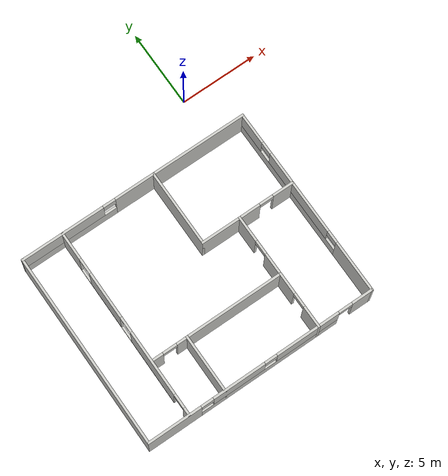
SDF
<?xml version='1.0'?>
<sdf version='1.7'>
  <model name='my_building'>
    <pose>-5.64 -7.855 0 0 -0 0</pose>
    <link name='Wall_38'>
      <collision name='Wall_38_Collision'>
        <geometry>
          <box>
            <size>12.5 0.15 2.5</size>
          </box>
        </geometry>
        <pose>0 0 1.25 0 -0 0</pose>
      </collision>
      <visual name='Wall_38_Visual'>
        <pose>0 0 1.25 0 -0 0</pose>
        <geometry>
          <box>
            <size>12.5 0.15 2.5</size>
          </box>
        </geometry>
        <material>
          <script>
            <uri>file://media/materials/scripts/gazebo.material</uri>
            <name>Gazebo/CeilingTiled</name>
          </script>
          <ambient>0.760784 0.662745 0.627451 1</ambient>
        </material>
        <meta>
          <layer>0</layer>
        </meta>
      </visual>
      <pose>-7.425 -1.605 0 0 -0 -1.5708</pose>
    </link>
    <link name='Wall_39'>
      <pose>-0 -7.78 0 0 -0 0</pose>
      <visual name='Wall_39_Visual_0'>
        <pose>-5.74511 0 1.25 0 -0 0</pose>
        <geometry>
          <box>
            <size>3.50978 0.15 2.5</size>
          </box>
        </geometry>
        <material>
          <script>
            <uri>file://media/materials/scripts/gazebo.material</uri>
            <name>Gazebo/CeilingTiled</name>
          </script>
          <ambient>0.760784 0.662745 0.627451 1</ambient>
        </material>
        <meta>
          <layer>0</layer>
        </meta>
      </visual>
      <collision name='Wall_39_Collision_0'>
        <geometry>
          <box>
            <size>3.50978 0.15 2.5</size>
          </box>
        </geometry>
        <pose>-5.74511 0 1.25 0 -0 0</pose>
      </collision>
      <visual name='Wall_39_Visual_1'>
        <pose>6.79076 0 1.25 0 -0 0</pose>
        <geometry>
          <box>
            <size>1.41848 0.15 2.5</size>
          </box>
        </geometry>
        <material>
          <script>
            <uri>file://media/materials/scripts/gazebo.material</uri>
            <name>Gazebo/CeilingTiled</name>
          </script>
          <ambient>0.760784 0.662745 0.627451 1</ambient>
        </material>
        <meta>
          <layer>0</layer>
        </meta>
      </visual>
      <collision name='Wall_39_Collision_1'>
        <geometry>
          <box>
            <size>1.41848 0.15 2.5</size>
          </box>
        </geometry>
        <pose>6.79076 0 1.25 0 -0 0</pose>
      </collision>
      <visual name='Wall_39_Visual_2'>
        <pose>0.595652 0 0.5 0 -0 0</pose>
        <geometry>
          <box>
            <size>9.17174 0.15 1</size>
          </box>
        </geometry>
        <material>
          <script>
            <uri>file://media/materials/scripts/gazebo.material</uri>
            <name>Gazebo/CeilingTiled</name>
          </script>
          <ambient>0.760784 0.662745 0.627451 1</ambient>
        </material>
        <meta>
          <layer>0</layer>
        </meta>
      </visual>
      <collision name='Wall_39_Collision_2'>
        <geometry>
          <box>
            <size>9.17174 0.15 1</size>
          </box>
        </geometry>
        <pose>0.595652 0 0.5 0 -0 0</pose>
      </collision>
      <visual name='Wall_39_Visual_3'>
        <pose>-1.4837 0 1.75 0 -0 0</pose>
        <geometry>
          <box>
            <size>3.41304 0.15 1.5</size>
          </box>
        </geometry>
        <material>
          <script>
            <uri>file://media/materials/scripts/gazebo.material</uri>
            <name>Gazebo/CeilingTiled</name>
          </script>
          <ambient>0.760784 0.662745 0.627451 1</ambient>
        </material>
        <meta>
          <layer>0</layer>
        </meta>
      </visual>
      <collision name='Wall_39_Collision_3'>
        <geometry>
          <box>
            <size>3.41304 0.15 1.5</size>
          </box>
        </geometry>
        <pose>-1.4837 0 1.75 0 -0 0</pose>
      </collision>
      <visual name='Wall_39_Visual_4'>
        <pose>3.10217 0 1.75 0 -0 0</pose>
        <geometry>
          <box>
            <size>4.1587 0.15 1.5</size>
          </box>
        </geometry>
        <material>
          <script>
            <uri>file://media/materials/scripts/gazebo.material</uri>
            <name>Gazebo/CeilingTiled</name>
          </script>
          <ambient>0.760784 0.662745 0.627451 1</ambient>
        </material>
        <meta>
          <layer>0</layer>
        </meta>
      </visual>
      <collision name='Wall_39_Collision_4'>
        <geometry>
          <box>
            <size>4.1587 0.15 1.5</size>
          </box>
        </geometry>
        <pose>3.10217 0 1.75 0 -0 0</pose>
      </collision>
      <visual name='Wall_39_Visual_5'>
        <pose>-3.59022 0 2.15 0 -0 0</pose>
        <geometry>
          <box>
            <size>0.8 0.15 0.7</size>
          </box>
        </geometry>
        <material>
          <script>
            <uri>file://media/materials/scripts/gazebo.material</uri>
            <name>Gazebo/CeilingTiled</name>
          </script>
          <ambient>0.760784 0.662745 0.627451 1</ambient>
        </material>
        <meta>
          <layer>0</layer>
        </meta>
      </visual>
      <collision name='Wall_39_Collision_5'>
        <geometry>
          <box>
            <size>0.8 0.15 0.7</size>
          </box>
        </geometry>
        <pose>-3.59022 0 2.15 0 -0 0</pose>
      </collision>
      <visual name='Wall_39_Visual_6'>
        <pose>0.622826 0 2.15 0 -0 0</pose>
        <geometry>
          <box>
            <size>0.8 0.15 0.7</size>
          </box>
        </geometry>
        <material>
          <script>
            <uri>file://media/materials/scripts/gazebo.material</uri>
            <name>Gazebo/CeilingTiled</name>
          </script>
          <ambient>0.760784 0.662745 0.627451 1</ambient>
        </material>
        <meta>
          <layer>0</layer>
        </meta>
      </visual>
      <collision name='Wall_39_Collision_6'>
        <geometry>
          <box>
            <size>0.8 0.15 0.7</size>
          </box>
        </geometry>
        <pose>0.622826 0 2.15 0 -0 0</pose>
      </collision>
      <visual name='Wall_39_Visual_7'>
        <pose>5.63152 0 2.25 0 -0 0</pose>
        <geometry>
          <box>
            <size>0.9 0.15 0.5</size>
          </box>
        </geometry>
        <material>
          <script>
            <uri>file://media/materials/scripts/gazebo.material</uri>
            <name>Gazebo/CeilingTiled</name>
          </script>
          <ambient>0.760784 0.662745 0.627451 1</ambient>
        </material>
        <meta>
          <layer>0</layer>
        </meta>
      </visual>
      <collision name='Wall_39_Collision_7'>
        <geometry>
          <box>
            <size>0.9 0.15 0.5</size>
          </box>
        </geometry>
        <pose>5.63152 0 2.25 0 -0 0</pose>
      </collision>
    </link>
    <link name='Wall_40'>
      <pose>7.425 -1.605 0 0 -0 1.5708</pose>
      <visual name='Wall_40_Visual_0'>
        <pose>-4.57446 0 1.25 0 -0 0</pose>
        <geometry>
          <box>
            <size>3.35109 0.15 2.5</size>
          </box>
        </geometry>
        <material>
          <script>
            <uri>file://media/materials/scripts/gazebo.material</uri>
            <name>Gazebo/CeilingTiled</name>
          </script>
          <ambient>0.760784 0.662745 0.627451 1</ambient>
        </material>
        <meta>
          <layer>0</layer>
        </meta>
      </visual>
      <collision name='Wall_40_Collision_0'>
        <geometry>
          <box>
            <size>3.35109 0.15 2.5</size>
          </box>
        </geometry>
        <pose>-4.57446 0 1.25 0 -0 0</pose>
      </collision>
      <visual name='Wall_40_Visual_1'>
        <pose>1.67554 0 0.5 0 -0 0</pose>
        <geometry>
          <box>
            <size>9.14891 0.15 1</size>
          </box>
        </geometry>
        <material>
          <script>
            <uri>file://media/materials/scripts/gazebo.material</uri>
            <name>Gazebo/CeilingTiled</name>
          </script>
          <ambient>0.760784 0.662745 0.627451 1</ambient>
        </material>
        <meta>
          <layer>0</layer>
        </meta>
      </visual>
      <collision name='Wall_40_Collision_1'>
        <geometry>
          <box>
            <size>9.14891 0.15 1</size>
          </box>
        </geometry>
        <pose>1.67554 0 0.5 0 -0 0</pose>
      </collision>
      <visual name='Wall_40_Visual_2'>
        <pose>0.651087 0 1.75 0 -0 0</pose>
        <geometry>
          <box>
            <size>5.5 0.15 1.5</size>
          </box>
        </geometry>
        <material>
          <script>
            <uri>file://media/materials/scripts/gazebo.material</uri>
            <name>Gazebo/CeilingTiled</name>
          </script>
          <ambient>0.760784 0.662745 0.627451 1</ambient>
        </material>
        <meta>
          <layer>0</layer>
        </meta>
      </visual>
      <collision name='Wall_40_Collision_2'>
        <geometry>
          <box>
            <size>5.5 0.15 1.5</size>
          </box>
        </geometry>
        <pose>0.651087 0 1.75 0 -0 0</pose>
      </collision>
      <visual name='Wall_40_Visual_3'>
        <pose>5.22554 0 1.75 0 -0 0</pose>
        <geometry>
          <box>
            <size>2.04891 0.15 1.5</size>
          </box>
        </geometry>
        <material>
          <script>
            <uri>file://media/materials/scripts/gazebo.material</uri>
            <name>Gazebo/CeilingTiled</name>
          </script>
          <ambient>0.760784 0.662745 0.627451 1</ambient>
        </material>
        <meta>
          <layer>0</layer>
        </meta>
      </visual>
      <collision name='Wall_40_Collision_3'>
        <geometry>
          <box>
            <size>2.04891 0.15 1.5</size>
          </box>
        </geometry>
        <pose>5.22554 0 1.75 0 -0 0</pose>
      </collision>
      <visual name='Wall_40_Visual_4'>
        <pose>-2.49891 0 2.15 0 -0 0</pose>
        <geometry>
          <box>
            <size>0.8 0.15 0.7</size>
          </box>
        </geometry>
        <material>
          <script>
            <uri>file://media/materials/scripts/gazebo.material</uri>
            <name>Gazebo/CeilingTiled</name>
          </script>
          <ambient>0.760784 0.662745 0.627451 1</ambient>
        </material>
        <meta>
          <layer>0</layer>
        </meta>
      </visual>
      <collision name='Wall_40_Collision_4'>
        <geometry>
          <box>
            <size>0.8 0.15 0.7</size>
          </box>
        </geometry>
        <pose>-2.49891 0 2.15 0 -0 0</pose>
      </collision>
      <visual name='Wall_40_Visual_5'>
        <pose>3.80109 0 2.15 0 -0 0</pose>
        <geometry>
          <box>
            <size>0.8 0.15 0.7</size>
          </box>
        </geometry>
        <material>
          <script>
            <uri>file://media/materials/scripts/gazebo.material</uri>
            <name>Gazebo/CeilingTiled</name>
          </script>
          <ambient>0.760784 0.662745 0.627451 1</ambient>
        </material>
        <meta>
          <layer>0</layer>
        </meta>
      </visual>
      <collision name='Wall_40_Collision_5'>
        <geometry>
          <box>
            <size>0.8 0.15 0.7</size>
          </box>
        </geometry>
        <pose>3.80109 0 2.15 0 -0 0</pose>
      </collision>
    </link>
    <link name='Wall_41'>
      <pose>-0 4.57 0 0 -0 3.14159</pose>
      <visual name='Wall_41_Visual_0'>
        <pose>-3.11359 0 1.25 0 -0 0</pose>
        <geometry>
          <box>
            <size>8.77283 0.15 2.5</size>
          </box>
        </geometry>
        <material>
          <script>
            <uri>file://media/materials/scripts/gazebo.material</uri>
            <name>Gazebo/CeilingTiled</name>
          </script>
          <ambient>0.760784 0.662745 0.627451 1</ambient>
        </material>
        <meta>
          <layer>0</layer>
        </meta>
      </visual>
      <collision name='Wall_41_Collision_0'>
        <geometry>
          <box>
            <size>8.77283 0.15 2.5</size>
          </box>
        </geometry>
        <pose>-3.11359 0 1.25 0 -0 0</pose>
      </collision>
      <visual name='Wall_41_Visual_1'>
        <pose>4.38641 0 0.5 0 -0 0</pose>
        <geometry>
          <box>
            <size>6.22717 0.15 1</size>
          </box>
        </geometry>
        <material>
          <script>
            <uri>file://media/materials/scripts/gazebo.material</uri>
            <name>Gazebo/CeilingTiled</name>
          </script>
          <ambient>0.760784 0.662745 0.627451 1</ambient>
        </material>
        <meta>
          <layer>0</layer>
        </meta>
      </visual>
      <collision name='Wall_41_Collision_1'>
        <geometry>
          <box>
            <size>6.22717 0.15 1</size>
          </box>
        </geometry>
        <pose>4.38641 0 0.5 0 -0 0</pose>
      </collision>
      <visual name='Wall_41_Visual_2'>
        <pose>4.78641 0 1.75 0 -0 0</pose>
        <geometry>
          <box>
            <size>5.42717 0.15 1.5</size>
          </box>
        </geometry>
        <material>
          <script>
            <uri>file://media/materials/scripts/gazebo.material</uri>
            <name>Gazebo/CeilingTiled</name>
          </script>
          <ambient>0.760784 0.662745 0.627451 1</ambient>
        </material>
        <meta>
          <layer>0</layer>
        </meta>
      </visual>
      <collision name='Wall_41_Collision_2'>
        <geometry>
          <box>
            <size>5.42717 0.15 1.5</size>
          </box>
        </geometry>
        <pose>4.78641 0 1.75 0 -0 0</pose>
      </collision>
      <visual name='Wall_41_Visual_3'>
        <pose>1.67283 0 2.15 0 -0 0</pose>
        <geometry>
          <box>
            <size>0.8 0.15 0.7</size>
          </box>
        </geometry>
        <material>
          <script>
            <uri>file://media/materials/scripts/gazebo.material</uri>
            <name>Gazebo/CeilingTiled</name>
          </script>
          <ambient>0.760784 0.662745 0.627451 1</ambient>
        </material>
        <meta>
          <layer>0</layer>
        </meta>
      </visual>
      <collision name='Wall_41_Collision_3'>
        <geometry>
          <box>
            <size>0.8 0.15 0.7</size>
          </box>
        </geometry>
        <pose>1.67283 0 2.15 0 -0 0</pose>
      </collision>
    </link>
    <link name='Wall_44'>
      <collision name='Wall_44_Collision'>
        <geometry>
          <box>
            <size>5 0.15 2.5</size>
          </box>
        </geometry>
        <pose>0 0 1.25 0 -0 0</pose>
      </collision>
      <visual name='Wall_44_Visual'>
        <pose>0 0 1.25 0 -0 0</pose>
        <geometry>
          <box>
            <size>5 0.15 2.5</size>
          </box>
        </geometry>
        <material>
          <script>
            <uri>file://media/materials/scripts/gazebo.material</uri>
            <name>Gazebo/CeilingTiled</name>
          </script>
          <ambient>0.760784 0.662745 0.627451 1</ambient>
        </material>
        <meta>
          <layer>0</layer>
        </meta>
      </visual>
      <pose>1.325 2.145 0 0 -0 -1.5708</pose>
    </link>
    <link name='Wall_45'>
      <pose>4.375 -0.28 0 0 -0 0</pose>
      <visual name='Wall_45_Visual_0'>
        <pose>-1.15924 0 1.25 0 -0 0</pose>
        <geometry>
          <box>
            <size>3.93152 0.15 2.5</size>
          </box>
        </geometry>
        <material>
          <script>
            <uri>file://media/materials/scripts/gazebo.material</uri>
            <name>Gazebo/CeilingTiled</name>
          </script>
          <ambient>0.760784 0.662745 0.627451 1</ambient>
        </material>
        <meta>
          <layer>0</layer>
        </meta>
      </visual>
      <collision name='Wall_45_Collision_0'>
        <geometry>
          <box>
            <size>3.93152 0.15 2.5</size>
          </box>
        </geometry>
        <pose>-1.15924 0 1.25 0 -0 0</pose>
      </collision>
      <visual name='Wall_45_Visual_1'>
        <pose>2.41576 0 1.25 0 -0 0</pose>
        <geometry>
          <box>
            <size>1.41848 0.15 2.5</size>
          </box>
        </geometry>
        <material>
          <script>
            <uri>file://media/materials/scripts/gazebo.material</uri>
            <name>Gazebo/CeilingTiled</name>
          </script>
          <ambient>0.760784 0.662745 0.627451 1</ambient>
        </material>
        <meta>
          <layer>0</layer>
        </meta>
      </visual>
      <collision name='Wall_45_Collision_1'>
        <geometry>
          <box>
            <size>1.41848 0.15 2.5</size>
          </box>
        </geometry>
        <pose>2.41576 0 1.25 0 -0 0</pose>
      </collision>
      <visual name='Wall_45_Visual_2'>
        <pose>1.25652 0 2.25 0 -0 0</pose>
        <geometry>
          <box>
            <size>0.9 0.15 0.5</size>
          </box>
        </geometry>
        <material>
          <script>
            <uri>file://media/materials/scripts/gazebo.material</uri>
            <name>Gazebo/CeilingTiled</name>
          </script>
          <ambient>0.760784 0.662745 0.627451 1</ambient>
        </material>
        <meta>
          <layer>0</layer>
        </meta>
      </visual>
      <collision name='Wall_45_Collision_2'>
        <geometry>
          <box>
            <size>0.9 0.15 0.5</size>
          </box>
        </geometry>
        <pose>1.25652 0 2.25 0 -0 0</pose>
      </collision>
    </link>
    <link name='Wall_48'>
      <pose>3.825 -4.03 0 0 -0 -1.5708</pose>
      <visual name='Wall_48_Visual_0'>
        <pose>-2.98098 0 1.25 0 -0 0</pose>
        <geometry>
          <box>
            <size>1.68804 0.15 2.5</size>
          </box>
        </geometry>
        <material>
          <script>
            <uri>file://media/materials/scripts/gazebo.material</uri>
            <name>Gazebo/CeilingTiled</name>
          </script>
          <ambient>0.760784 0.662745 0.627451 1</ambient>
        </material>
        <meta>
          <layer>0</layer>
        </meta>
      </visual>
      <collision name='Wall_48_Collision_0'>
        <geometry>
          <box>
            <size>1.68804 0.15 2.5</size>
          </box>
        </geometry>
        <pose>-2.98098 0 1.25 0 -0 0</pose>
      </collision>
      <visual name='Wall_48_Visual_1'>
        <pose>0.132608 0 1.25 0 -0 0</pose>
        <geometry>
          <box>
            <size>2.73913 0.15 2.5</size>
          </box>
        </geometry>
        <material>
          <script>
            <uri>file://media/materials/scripts/gazebo.material</uri>
            <name>Gazebo/CeilingTiled</name>
          </script>
          <ambient>0.760784 0.662745 0.627451 1</ambient>
        </material>
        <meta>
          <layer>0</layer>
        </meta>
      </visual>
      <collision name='Wall_48_Collision_1'>
        <geometry>
          <box>
            <size>2.73913 0.15 2.5</size>
          </box>
        </geometry>
        <pose>0.132608 0 1.25 0 -0 0</pose>
      </collision>
      <visual name='Wall_48_Visual_2'>
        <pose>3.11359 0 1.25 0 -0 0</pose>
        <geometry>
          <box>
            <size>1.42283 0.15 2.5</size>
          </box>
        </geometry>
        <material>
          <script>
            <uri>file://media/materials/scripts/gazebo.material</uri>
            <name>Gazebo/CeilingTiled</name>
          </script>
          <ambient>0.760784 0.662745 0.627451 1</ambient>
        </material>
        <meta>
          <layer>0</layer>
        </meta>
      </visual>
      <collision name='Wall_48_Collision_2'>
        <geometry>
          <box>
            <size>1.42283 0.15 2.5</size>
          </box>
        </geometry>
        <pose>3.11359 0 1.25 0 -0 0</pose>
      </collision>
      <visual name='Wall_48_Visual_3'>
        <pose>-1.68696 0 2.25 0 -0 0</pose>
        <geometry>
          <box>
            <size>0.9 0.15 0.5</size>
          </box>
        </geometry>
        <material>
          <script>
            <uri>file://media/materials/scripts/gazebo.material</uri>
            <name>Gazebo/CeilingTiled</name>
          </script>
          <ambient>0.760784 0.662745 0.627451 1</ambient>
        </material>
        <meta>
          <layer>0</layer>
        </meta>
      </visual>
      <collision name='Wall_48_Collision_3'>
        <geometry>
          <box>
            <size>0.9 0.15 0.5</size>
          </box>
        </geometry>
        <pose>-1.68696 0 2.25 0 -0 0</pose>
      </collision>
      <visual name='Wall_48_Visual_4'>
        <pose>1.95217 0 2.25 0 -0 0</pose>
        <geometry>
          <box>
            <size>0.9 0.15 0.5</size>
          </box>
        </geometry>
        <material>
          <script>
            <uri>file://media/materials/scripts/gazebo.material</uri>
            <name>Gazebo/CeilingTiled</name>
          </script>
          <ambient>0.760784 0.662745 0.627451 1</ambient>
        </material>
        <meta>
          <layer>0</layer>
        </meta>
      </visual>
      <collision name='Wall_48_Collision_4'>
        <geometry>
          <box>
            <size>0.9 0.15 0.5</size>
          </box>
        </geometry>
        <pose>1.95217 0 2.25 0 -0 0</pose>
      </collision>
    </link>
    <link name='Wall_51'>
      <pose>-0.475 -4.18 0 0 -0 3.14159</pose>
      <visual name='Wall_51_Visual_0'>
        <pose>-0.861413 0 1.25 0 -0 0</pose>
        <geometry>
          <box>
            <size>7.02717 0.15 2.5</size>
          </box>
        </geometry>
        <material>
          <script>
            <uri>file://media/materials/scripts/gazebo.material</uri>
            <name>Gazebo/CeilingTiled</name>
          </script>
          <ambient>0.760784 0.662745 0.627451 1</ambient>
        </material>
        <meta>
          <layer>0</layer>
        </meta>
      </visual>
      <collision name='Wall_51_Collision_0'>
        <geometry>
          <box>
            <size>7.02717 0.15 2.5</size>
          </box>
        </geometry>
        <pose>-0.861413 0 1.25 0 -0 0</pose>
      </collision>
      <visual name='Wall_51_Visual_1'>
        <pose>3.96359 0 1.25 0 -0 0</pose>
        <geometry>
          <box>
            <size>0.822826 0.15 2.5</size>
          </box>
        </geometry>
        <material>
          <script>
            <uri>file://media/materials/scripts/gazebo.material</uri>
            <name>Gazebo/CeilingTiled</name>
          </script>
          <ambient>0.760784 0.662745 0.627451 1</ambient>
        </material>
        <meta>
          <layer>0</layer>
        </meta>
      </visual>
      <collision name='Wall_51_Collision_1'>
        <geometry>
          <box>
            <size>0.822826 0.15 2.5</size>
          </box>
        </geometry>
        <pose>3.96359 0 1.25 0 -0 0</pose>
      </collision>
      <visual name='Wall_51_Visual_2'>
        <pose>3.10217 0 2.25 0 -0 0</pose>
        <geometry>
          <box>
            <size>0.9 0.15 0.5</size>
          </box>
        </geometry>
        <material>
          <script>
            <uri>file://media/materials/scripts/gazebo.material</uri>
            <name>Gazebo/CeilingTiled</name>
          </script>
          <ambient>0.760784 0.662745 0.627451 1</ambient>
        </material>
        <meta>
          <layer>0</layer>
        </meta>
      </visual>
      <collision name='Wall_51_Collision_2'>
        <geometry>
          <box>
            <size>0.9 0.15 0.5</size>
          </box>
        </geometry>
        <pose>3.10217 0 2.25 0 -0 0</pose>
      </collision>
    </link>
    <link name='Wall_54'>
      <collision name='Wall_54_Collision'>
        <geometry>
          <box>
            <size>0.16 0.15 2.5</size>
          </box>
        </geometry>
        <pose>0 0 1.25 0 -0 0</pose>
      </collision>
      <visual name='Wall_54_Visual'>
        <pose>0 0 1.25 0 -0 0</pose>
        <geometry>
          <box>
            <size>0.16 0.15 2.5</size>
          </box>
        </geometry>
        <material>
          <script>
            <uri>file://media/materials/scripts/gazebo.material</uri>
            <name>Gazebo/Grey</name>
          </script>
          <ambient>1 1 1 1</ambient>
        </material>
        <meta>
          <layer>0</layer>
        </meta>
      </visual>
      <pose>-4.77019 -7.77998 0 0 -0 0</pose>
    </link>
    <link name='Wall_60'>
      <pose>-4.775 -1.6015 0 0 -0 -1.5708</pose>
      <visual name='Wall_60_Visual_0'>
        <pose>-5.32364 0 1.25 0 -0 0</pose>
        <geometry>
          <box>
            <size>1.81971 0.15 2.5</size>
          </box>
        </geometry>
        <material>
          <script>
            <uri>file://media/materials/scripts/gazebo.material</uri>
            <name>Gazebo/CeilingTiled</name>
          </script>
          <ambient>0.760784 0.662745 0.627451 1</ambient>
        </material>
        <meta>
          <layer>0</layer>
        </meta>
      </visual>
      <collision name='Wall_60_Collision_0'>
        <geometry>
          <box>
            <size>1.81971 0.15 2.5</size>
          </box>
        </geometry>
        <pose>-5.32364 0 1.25 0 -0 0</pose>
      </collision>
      <visual name='Wall_60_Visual_1'>
        <pose>5.96251 0 1.25 0 -0 0</pose>
        <geometry>
          <box>
            <size>0.541971 0.15 2.5</size>
          </box>
        </geometry>
        <material>
          <script>
            <uri>file://media/materials/scripts/gazebo.material</uri>
            <name>Gazebo/CeilingTiled</name>
          </script>
          <ambient>0.760784 0.662745 0.627451 1</ambient>
        </material>
        <meta>
          <layer>0</layer>
        </meta>
      </visual>
      <collision name='Wall_60_Collision_1'>
        <geometry>
          <box>
            <size>0.541971 0.15 2.5</size>
          </box>
        </geometry>
        <pose>5.96251 0 1.25 0 -0 0</pose>
      </collision>
      <visual name='Wall_60_Visual_2'>
        <pose>0.188871 0 0.0625 0 -0 0</pose>
        <geometry>
          <box>
            <size>9.20531 0.15 0.125</size>
          </box>
        </geometry>
        <material>
          <script>
            <uri>file://media/materials/scripts/gazebo.material</uri>
            <name>Gazebo/CeilingTiled</name>
          </script>
          <ambient>0.760784 0.662745 0.627451 1</ambient>
        </material>
        <meta>
          <layer>0</layer>
        </meta>
      </visual>
      <collision name='Wall_60_Collision_2'>
        <geometry>
          <box>
            <size>9.20531 0.15 0.125</size>
          </box>
        </geometry>
        <pose>0.188871 0 0.0625 0 -0 0</pose>
      </collision>
      <visual name='Wall_60_Visual_3'>
        <pose>-1.90416 0 1.3125 0 -0 0</pose>
        <geometry>
          <box>
            <size>3.01925 0.15 2.375</size>
          </box>
        </geometry>
        <material>
          <script>
            <uri>file://media/materials/scripts/gazebo.material</uri>
            <name>Gazebo/CeilingTiled</name>
          </script>
          <ambient>0.760784 0.662745 0.627451 1</ambient>
        </material>
        <meta>
          <layer>0</layer>
        </meta>
      </visual>
      <collision name='Wall_60_Collision_3'>
        <geometry>
          <box>
            <size>3.01925 0.15 2.375</size>
          </box>
        </geometry>
        <pose>-1.90416 0 1.3125 0 -0 0</pose>
      </collision>
      <visual name='Wall_60_Visual_4'>
        <pose>2.6985 0 1.3125 0 -0 0</pose>
        <geometry>
          <box>
            <size>4.18607 0.15 2.375</size>
          </box>
        </geometry>
        <material>
          <script>
            <uri>file://media/materials/scripts/gazebo.material</uri>
            <name>Gazebo/CeilingTiled</name>
          </script>
          <ambient>0.760784 0.662745 0.627451 1</ambient>
        </material>
        <meta>
          <layer>0</layer>
        </meta>
      </visual>
      <collision name='Wall_60_Collision_4'>
        <geometry>
          <box>
            <size>4.18607 0.15 2.375</size>
          </box>
        </geometry>
        <pose>2.6985 0 1.3125 0 -0 0</pose>
      </collision>
      <visual name='Wall_60_Visual_5'>
        <pose>5.24153 0 2.25 0 -0 0</pose>
        <geometry>
          <box>
            <size>0.9 0.15 0.5</size>
          </box>
        </geometry>
        <material>
          <script>
            <uri>file://media/materials/scripts/gazebo.material</uri>
            <name>Gazebo/CeilingTiled</name>
          </script>
          <ambient>0.760784 0.662745 0.627451 1</ambient>
        </material>
        <meta>
          <layer>0</layer>
        </meta>
      </visual>
      <collision name='Wall_60_Collision_5'>
        <geometry>
          <box>
            <size>0.9 0.15 0.5</size>
          </box>
        </geometry>
        <pose>5.24153 0 2.25 0 -0 0</pose>
      </collision>
      <visual name='Wall_60_Visual_6'>
        <pose>-3.91379 0 2.4375 0 -0 0</pose>
        <geometry>
          <box>
            <size>1 0.15 0.125</size>
          </box>
        </geometry>
        <material>
          <script>
            <uri>file://media/materials/scripts/gazebo.material</uri>
            <name>Gazebo/CeilingTiled</name>
          </script>
          <ambient>0.760784 0.662745 0.627451 1</ambient>
        </material>
        <meta>
          <layer>0</layer>
        </meta>
      </visual>
      <collision name='Wall_60_Collision_6'>
        <geometry>
          <box>
            <size>1 0.15 0.125</size>
          </box>
        </geometry>
        <pose>-3.91379 0 2.4375 0 -0 0</pose>
      </collision>
      <visual name='Wall_60_Visual_7'>
        <pose>0.105464 0 2.4375 0 -0 0</pose>
        <geometry>
          <box>
            <size>1 0.15 0.125</size>
          </box>
        </geometry>
        <material>
          <script>
            <uri>file://media/materials/scripts/gazebo.material</uri>
            <name>Gazebo/CeilingTiled</name>
          </script>
          <ambient>0.760784 0.662745 0.627451 1</ambient>
        </material>
        <meta>
          <layer>0</layer>
        </meta>
      </visual>
      <collision name='Wall_60_Collision_7'>
        <geometry>
          <box>
            <size>1 0.15 0.125</size>
          </box>
        </geometry>
        <pose>0.105464 0 2.4375 0 -0 0</pose>
      </collision>
    </link>
    <link name='Wall_63'>
      <collision name='Wall_63_Collision'>
        <geometry>
          <box>
            <size>3.75 0.15 2.5</size>
          </box>
        </geometry>
        <pose>0 0 1.25 0 -0 0</pose>
      </collision>
      <visual name='Wall_63_Visual'>
        <pose>0 0 1.25 0 -0 0</pose>
        <geometry>
          <box>
            <size>3.75 0.15 2.5</size>
          </box>
        </geometry>
        <material>
          <script>
            <uri>file://media/materials/scripts/gazebo.material</uri>
            <name>Gazebo/CeilingTiled</name>
          </script>
          <ambient>0.760784 0.662745 0.627451 1</ambient>
        </material>
        <meta>
          <layer>0</layer>
        </meta>
      </visual>
      <pose>-2.425 -5.98 0 0 -0 -1.5708</pose>
    </link>
    <static>1</static>
  </model>
</sdf>
